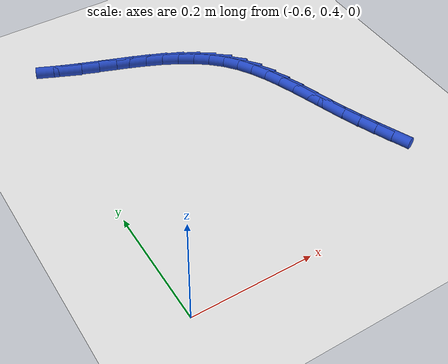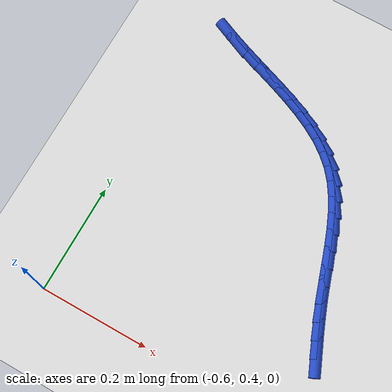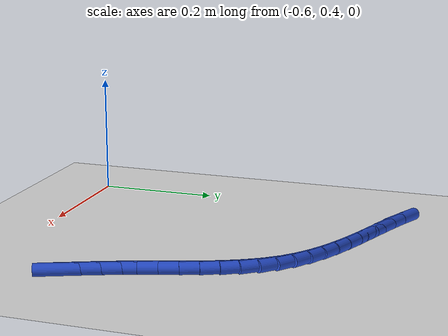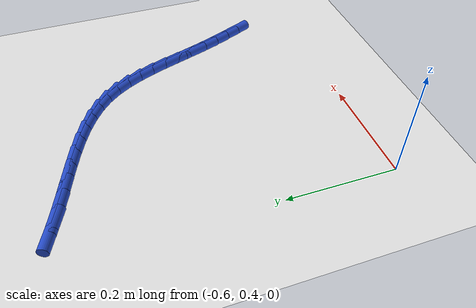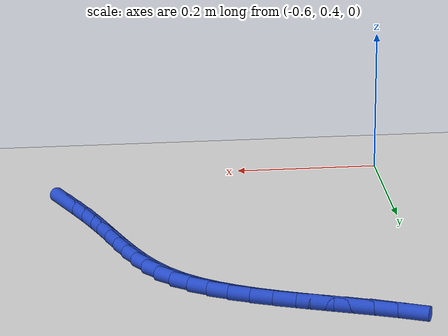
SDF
<sdf version="1.6">
 <world name="default">
  <model name="ground_plane">
   <static>1</static>
   <link name="link">
    <collision name="collision">
     <geometry><plane><normal>0 0 1</normal><size>100 100</size></plane></geometry>
     <surface><friction><ode><mu>100</mu><mu2>50</mu2></ode></friction></surface>
    </collision>
    <visual name="visual">
     <cast_shadows>0</cast_shadows>
     <geometry><plane><normal>0 0 1</normal><size>100 100</size></plane></geometry>
     <material>
      <script><uri>file://media/materials/scripts/gazebo.material</uri><name>Gazebo/WhiteGlow</name></script>
     </material>
    </visual>
   </link>
  </model>
  <model name="line">
   <link name="link_19">
    <pose>-0.1490577721544502 0.530596129443671 0.01 0 1.57 -1.1651339357890707</pose>
    <collision name="collision">
     <geometry><cylinder><radius>0.01</radius><length>0.08</length></cylinder></geometry>
    </collision>
    <visual name="visual">
     <material>
      <script><name>Gazebo/Blue</name><uri>file://media/materials/scripts/gazebo.material</uri></script>
     </material>
     <geometry><cylinder><radius>0.01</radius><length>0.08</length></cylinder></geometry>
    </visual>
   </link>
   <link name="link_20">
    <pose>-0.16088959791351878 0.5581450700738003 0.01 0 1.57 -1.1840717364077593</pose>
    <collision name="collision">
     <geometry><cylinder><radius>0.01</radius><length>0.08</length></cylinder></geometry>
    </collision>
    <visual name="visual">
     <material>
      <script><name>Gazebo/Blue</name><uri>file://media/materials/scripts/gazebo.material</uri></script>
     </material>
     <geometry><cylinder><radius>0.01</radius><length>0.08</length></cylinder></geometry>
    </visual>
   </link>
   <link name="link_21">
    <pose>-0.1722757294454918 0.5861049399103078 0.01 0 1.57 -1.2076925482630207</pose>
    <collision name="collision">
     <geometry><cylinder><radius>0.01</radius><length>0.08</length></cylinder></geometry>
    </collision>
    <visual name="visual">
     <material>
      <script><name>Gazebo/Blue</name><uri>file://media/materials/scripts/gazebo.material</uri></script>
     </material>
     <geometry><cylinder><radius>0.01</radius><length>0.08</length></cylinder></geometry>
    </visual>
   </link>
   <link name="link_22">
    <pose>-0.1830830361045583 0.6145489237905091 0.01 0 1.57 -1.2336070755049982</pose>
    <collision name="collision">
     <geometry><cylinder><radius>0.01</radius><length>0.08</length></cylinder></geometry>
    </collision>
    <visual name="visual">
     <material>
      <script><name>Gazebo/Blue</name><uri>file://media/materials/scripts/gazebo.material</uri></script>
     </material>
     <geometry><cylinder><radius>0.01</radius><length>0.08</length></cylinder></geometry>
    </visual>
   </link>
   <link name="link_23">
    <pose>-0.19323381619091404 0.6435033733119847 0.01 0 1.57 -1.246749932868883</pose>
    <collision name="collision">
     <geometry><cylinder><radius>0.01</radius><length>0.08</length></cylinder></geometry>
    </collision>
    <visual name="visual">
     <material>
      <script><name>Gazebo/Blue</name><uri>file://media/materials/scripts/gazebo.material</uri></script>
     </material>
     <geometry><cylinder><radius>0.01</radius><length>0.08</length></cylinder></geometry>
    </visual>
   </link>
   <link name="link_24">
    <pose>-0.20303139236991724 0.6726727034900045 0.01 0 1.57 -1.2410851200930193</pose>
    <collision name="collision">
     <geometry><cylinder><radius>0.01</radius><length>0.08</length></cylinder></geometry>
    </collision>
    <visual name="visual">
     <material>
      <script><name>Gazebo/Blue</name><uri>file://media/materials/scripts/gazebo.material</uri></script>
     </material>
     <geometry><cylinder><radius>0.01</radius><length>0.08</length></cylinder></geometry>
    </visual>
   </link>
   <link name="link_25">
    <pose>-0.2129392703352618 0.701625986875152 0.01 0 1.57 -1.2161343185415425</pose>
    <collision name="collision">
     <geometry><cylinder><radius>0.01</radius><length>0.08</length></cylinder></geometry>
    </collision>
    <visual name="visual">
     <material>
      <script><name>Gazebo/Blue</name><uri>file://media/materials/scripts/gazebo.material</uri></script>
     </material>
     <geometry><cylinder><radius>0.01</radius><length>0.08</length></cylinder></geometry>
    </visual>
   </link>
   <link name="link_26">
    <pose>-0.2234215102208193 0.7299318275582686 0.01 0 1.57 -1.1705075194769952</pose>
    <collision name="collision">
     <geometry><cylinder><radius>0.01</radius><length>0.08</length></cylinder></geometry>
    </collision>
    <visual name="visual">
     <material>
      <script><name>Gazebo/Blue</name><uri>file://media/materials/scripts/gazebo.material</uri></script>
     </material>
     <geometry><cylinder><radius>0.01</radius><length>0.08</length></cylinder></geometry>
    </visual>
   </link>
   <link name="link_27">
    <pose>-0.23494217216046115 0.7571588296301952 0.01 0 1.57 -1.1020364806004668</pose>
    <collision name="collision">
     <geometry><cylinder><radius>0.01</radius><length>0.08</length></cylinder></geometry>
    </collision>
    <visual name="visual">
     <material>
      <script><name>Gazebo/Blue</name><uri>file://media/materials/scripts/gazebo.material</uri></script>
     </material>
     <geometry><cylinder><radius>0.01</radius><length>0.08</length></cylinder></geometry>
    </visual>
   </link>
   <link name="link_28">
    <pose>-0.24796531628805887 0.7828755971817736 0.01 0 1.57 -1.0082679053842776</pose>
    <collision name="collision">
     <geometry><cylinder><radius>0.01</radius><length>0.08</length></cylinder></geometry>
    </collision>
    <visual name="visual">
     <material>
      <script><name>Gazebo/Blue</name><uri>file://media/materials/scripts/gazebo.material</uri></script>
     </material>
     <geometry><cylinder><radius>0.01</radius><length>0.08</length></cylinder></geometry>
    </visual>
   </link>
   <link name="link_29">
    <pose>-0.26295500273748396 0.8066507343038446 0.01 0 1.57 -0.8877111569736988</pose>
    <collision name="collision">
     <geometry><cylinder><radius>0.01</radius><length>0.08</length></cylinder></geometry>
    </collision>
    <visual name="visual">
     <material>
      <script><name>Gazebo/Blue</name><uri>file://media/materials/scripts/gazebo.material</uri></script>
     </material>
     <geometry><cylinder><radius>0.01</radius><length>0.08</length></cylinder></geometry>
    </visual>
   </link>
   <link name="link_30">
    <pose>-0.2803731900068053 0.8280548673200155 0.01 0 1.57 -0.7544953234870238</pose>
    <collision name="collision">
     <geometry><cylinder><radius>0.01</radius><length>0.08</length></cylinder></geometry>
    </collision>
    <visual name="visual">
     <material>
      <script><name>Gazebo/Blue</name><uri>file://media/materials/scripts/gazebo.material</uri></script>
     </material>
     <geometry><cylinder><radius>0.01</radius><length>0.08</length></cylinder></geometry>
    </visual>
   </link>
   <link name="link_31">
    <pose>-0.30042584895691915 0.8469049385839321 0.01 0 1.57 -0.6376440695467996</pose>
    <collision name="collision">
     <geometry><cylinder><radius>0.01</radius><length>0.08</length></cylinder></geometry>
    </collision>
    <visual name="visual">
     <material>
      <script><name>Gazebo/Blue</name><uri>file://media/materials/scripts/gazebo.material</uri></script>
     </material>
     <geometry><cylinder><radius>0.01</radius><length>0.08</length></cylinder></geometry>
    </visual>
   </link>
   <link name="link_32">
    <pose>-0.3228208729654477 0.8634971497981951 0.01 0 1.57 -0.5420153672627641</pose>
    <collision name="collision">
     <geometry><cylinder><radius>0.01</radius><length>0.08</length></cylinder></geometry>
    </collision>
    <visual name="visual">
     <material>
      <script><name>Gazebo/Blue</name><uri>file://media/materials/scripts/gazebo.material</uri></script>
     </material>
     <geometry><cylinder><radius>0.01</radius><length>0.08</length></cylinder></geometry>
    </visual>
   </link>
   <link name="link_33">
    <pose>-0.34720880208213806 0.8781828890962331 0.01 0 1.57 -0.4671745885433363</pose>
    <collision name="collision">
     <geometry><cylinder><radius>0.01</radius><length>0.08</length></cylinder></geometry>
    </collision>
    <visual name="visual">
     <material>
      <script><name>Gazebo/Blue</name><uri>file://media/materials/scripts/gazebo.material</uri></script>
     </material>
     <geometry><cylinder><radius>0.01</radius><length>0.08</length></cylinder></geometry>
    </visual>
   </link>
   <link name="link_34">
    <pose>-0.37324017635673806 0.8913135446114747 0.01 0 1.57 -0.411553588994451</pose>
    <collision name="collision">
     <geometry><cylinder><radius>0.01</radius><length>0.08</length></cylinder></geometry>
    </collision>
    <visual name="visual">
     <material>
      <script><name>Gazebo/Blue</name><uri>file://media/materials/scripts/gazebo.material</uri></script>
     </material>
     <geometry><cylinder><radius>0.01</radius><length>0.08</length></cylinder></geometry>
    </visual>
   </link>
   <link name="link_35">
    <pose>-0.400565535838995 0.903240504477349 0.01 0 1.57 -0.37337183882803654</pose>
    <collision name="collision">
     <geometry><cylinder><radius>0.01</radius><length>0.08</length></cylinder></geometry>
    </collision>
    <visual name="visual">
     <material>
      <script><name>Gazebo/Blue</name><uri>file://media/materials/scripts/gazebo.material</uri></script>
     </material>
     <geometry><cylinder><radius>0.01</radius><length>0.08</length></cylinder></geometry>
    </visual>
   </link>
   <link name="link_36">
    <pose>-0.42883542057865603 0.914315156827284 0.01 0 1.57 -0.3511368698114904</pose>
    <collision name="collision">
     <geometry><cylinder><radius>0.01</radius><length>0.08</length></cylinder></geometry>
    </collision>
    <visual name="visual">
     <material>
      <script><name>Gazebo/Blue</name><uri>file://media/materials/scripts/gazebo.material</uri></script>
     </material>
     <geometry><cylinder><radius>0.01</radius><length>0.08</length></cylinder></geometry>
    </visual>
   </link>
   <link name="link_37">
    <pose>-0.4577003706254688 0.9248888897947083 0.01 0 1.57 -0.3438637776267611</pose>
    <collision name="collision">
     <geometry><cylinder><radius>0.01</radius><length>0.08</length></cylinder></geometry>
    </collision>
    <visual name="visual">
     <material>
      <script><name>Gazebo/Blue</name><uri>file://media/materials/scripts/gazebo.material</uri></script>
     </material>
     <geometry><cylinder><radius>0.01</radius><length>0.08</length></cylinder></geometry>
    </visual>
   </link>
   <link name="link_38">
    <pose>-0.48681092602918086 0.9353130915130508 0.01 0 1.57 -0.35114902409987375</pose>
    <collision name="collision">
     <geometry><cylinder><radius>0.01</radius><length>0.08</length></cylinder></geometry>
    </collision>
    <visual name="visual">
     <material>
      <script><name>Gazebo/Blue</name><uri>file://media/materials/scripts/gazebo.material</uri></script>
     </material>
     <geometry><cylinder><radius>0.01</radius><length>0.08</length></cylinder></geometry>
    </visual>
   </link>
   <link name="link_39">
    <pose>-0.5158176268395396 0.9459391501157397 0.01 0 1.57 -0.37317720943024635</pose>
    <collision name="collision">
     <geometry><cylinder><radius>0.01</radius><length>0.08</length></cylinder></geometry>
    </collision>
    <visual name="visual">
     <material>
      <script><name>Gazebo/Blue</name><uri>file://media/materials/scripts/gazebo.material</uri></script>
     </material>
     <geometry><cylinder><radius>0.01</radius><length>0.08</length></cylinder></geometry>
    </visual>
   </link>
   <link name="link_40">
    <pose>-0.5443710131062921 0.9571184537362042 0.01 0 1.57 -0.41068645798672754</pose>
    <collision name="collision">
     <geometry><cylinder><radius>0.01</radius><length>0.08</length></cylinder></geometry>
    </collision>
    <visual name="visual">
     <material>
      <script><name>Gazebo/Blue</name><uri>file://media/materials/scripts/gazebo.material</uri></script>
     </material>
     <geometry><cylinder><radius>0.01</radius><length>0.08</length></cylinder></geometry>
    </visual>
   </link>
  </model>
 </world>
</sdf>
